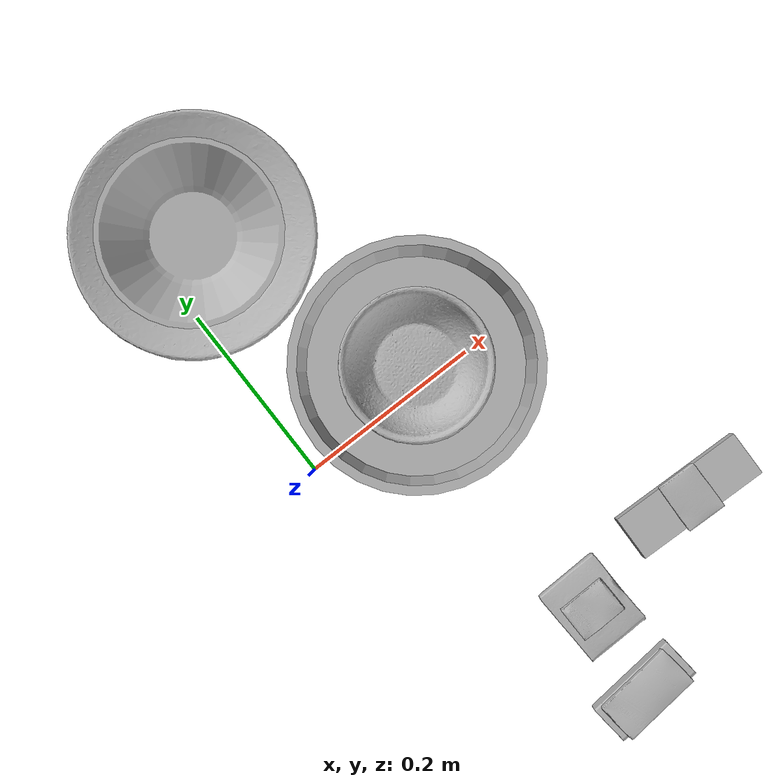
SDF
<?xml version="1.0" ?>
<sdf version="1.4">
  <world name="default">
    <light name="light1" type="point">
      <pose>0 0 1 0 0 0</pose>
      <diffuse>3 3 3 1</diffuse>
      <specular>3 3 3 1</specular>
    </light>
    <light name="light2" type="point">
      <pose>0 0.5 2 0 0 0</pose>
      <diffuse>1 1 1 1</diffuse>
      <specular>1 1 1 1</specular>
    </light>
    <light name="light3" type="point">
      <pose>0 0.5 2 0 0 0</pose>
      <diffuse>3 3 3 1</diffuse>
      <specular>3 3 3 1</specular>
    </light>
    <scene>
      <ambient>0.7 0.7 0.7</ambient>
    </scene>
    <model name="box1">
      <link name="link_box1">
        <collision name="default">
          <geometry>
            <mesh>
              <uri>model://jenga/collision_meshes/collision.obj</uri>
              <scale>1.0 1.0 1.0</scale>
            </mesh>
          </geometry>
          <surface>
            <friction>
              <ode>
                <mu>0.5</mu>
                <mu2>0.5</mu2>
              </ode>
            </friction>
          </surface>
        </collision>
        <visual name="default">
          <geometry>
            <mesh>
              <uri>model://jenga/visual_meshes/visual.dae</uri>
              <scale>1.0 1.0 1.0</scale>
            </mesh>
          </geometry>
        </visual>
        <inertial>
          <mass>0.21843092143535614</mass>
          <pose>-2.502855807051674e-07 -0.00010250011109746993 -4.092339804628864e-05 0.0 -7.342154049184251e-07 0.0</pose>
          <inertia>
            <ixx>6.0445138e-05</ixx>
            <iyy>0.0004095746</iyy>
            <izz>0.00043725572</izz>
            <ixy>0</ixy>
            <ixz>0</ixz>
            <iyz>0</iyz>
          </inertia>
        </inertial>
      </link>
      <pose>0.29000329971313477 -0.2598975896835327 0.014999999664723873 3.521602869732722e-07 -1.5552028231152527e-08 -0.027384141955537462</pose>
    </model>
    <model name="box11">
      <link name="link_box11">
        <collision name="default">
          <geometry>
            <mesh>
              <uri>model://pudding_box/collision_meshes/collision.obj</uri>
              <scale>0.5 0.5 0.5</scale>
            </mesh>
          </geometry>
          <surface>
            <friction>
              <ode>
                <mu>0.5</mu>
                <mu2>0.5</mu2>
              </ode>
            </friction>
          </surface>
        </collision>
        <visual name="default">
          <geometry>
            <mesh>
              <uri>model://pudding_box/visual_meshes/visual.dae</uri>
              <scale>0.5 0.5 0.5</scale>
            </mesh>
          </geometry>
        </visual>
        <inertial>
          <mass>0.04130476340651512</mass>
          <pose>0.00024474109522998333 0.00040339428232982755 -0.0002594413817860186 0.005213101341234124 -0.006603795469139562 0.020079830758209564</pose>
          <inertia>
            <ixx>1.1673226e-05</ixx>
            <iyy>7.85383e-06</iyy>
            <izz>1.723857e-05</izz>
            <ixy>0</ixy>
            <ixz>0</ixz>
            <iyz>0</iyz>
          </inertia>
        </inertial>
      </link>
      <pose>0.2897201180458069 -0.26027122139930725 0.03986290842294693 0.022351590062401987 -0.011390403936930027 -0.02751157354805657</pose>
    </model>
    <model name="box2">
      <link name="link_box2">
        <collision name="default">
          <geometry>
            <mesh>
              <uri>model://gelatin_box/collision_meshes/collision.obj</uri>
              <scale>1.0 1.0 1.0</scale>
            </mesh>
          </geometry>
          <surface>
            <friction>
              <ode>
                <mu>0.5</mu>
                <mu2>0.5</mu2>
              </ode>
            </friction>
          </surface>
        </collision>
        <visual name="default">
          <geometry>
            <mesh>
              <uri>model://gelatin_box/visual_meshes/visual.dae</uri>
              <scale>1.0 1.0 1.0</scale>
            </mesh>
          </geometry>
        </visual>
        <inertial>
          <mass>0.24153950810432434</mass>
          <pose>0.0004319618456065655 0.00011156871914863586 -0.0003640321083366871 -0.001050371984258798 -0.004755819621622892 0.016440559472145032</pose>
          <inertia>
            <ixx>0.00017050719</ixx>
            <iyy>0.00012179239</iyy>
            <izz>0.0002595499</izz>
            <ixy>0</ixy>
            <ixz>0</ixz>
            <iyz>0</iyz>
          </inertia>
        </inertial>
      </link>
      <pose>0.1399851143360138 -0.2900899350643158 0.015168316662311554 0.00559746367759257 -0.0073045724674317275 0.022150693611762463</pose>
    </model>
    <model name="box21">
      <link name="link_box21">
        <collision name="default">
          <geometry>
            <mesh>
              <uri>model://cracker_box/collision_meshes/collision.obj</uri>
              <scale>0.25 0.25 0.25</scale>
            </mesh>
          </geometry>
          <surface>
            <friction>
              <ode>
                <mu>0.5</mu>
                <mu2>0.5</mu2>
              </ode>
            </friction>
          </surface>
        </collision>
        <visual name="default">
          <geometry>
            <mesh>
              <uri>model://cracker_box/visual_meshes/visual.dae</uri>
              <scale>0.25 0.25 0.25</scale>
            </mesh>
          </geometry>
        </visual>
        <inertial>
          <mass>0.04855586588382721</mass>
          <pose>0.00023660322767682374 6.358561222441494e-05 -0.00042573834070935845 -0.00031620783521113603 -0.01110649053142329 0.0025467954689779603</pose>
          <inertia>
            <ixx>7.719027e-06</ixx>
            <iyy>1.2745631e-05</iyy>
            <izz>1.8189185e-05</izz>
            <ixy>0</ixy>
            <ixz>0</ixz>
            <iyz>0</iyz>
          </inertia>
        </inertial>
      </link>
      <pose>0.13907407224178314 -0.2891889214515686 0.03884478285908699 -0.02183825759502145 -0.04041607254614176 0.01981909684530615</pose>
    </model>
    <model name="box3">
      <link name="link_box3">
        <collision name="default">
          <geometry>
            <mesh>
              <uri>model://wood_block/collision_meshes/collision.obj</uri>
              <scale>0.5 0.5 0.5</scale>
            </mesh>
          </geometry>
          <surface>
            <friction>
              <ode>
                <mu>0.5</mu>
                <mu2>0.5</mu2>
              </ode>
            </friction>
          </surface>
        </collision>
        <visual name="default">
          <geometry>
            <mesh>
              <uri>model://wood_block/visual_meshes/visual.dae</uri>
              <scale>0.5 0.5 0.5</scale>
            </mesh>
          </geometry>
        </visual>
        <inertial>
          <mass>0.17342756688594818</mass>
          <pose>-2.906657982748584e-06 -0.000285404734313488 0.00013204291462898254 -0.052208426481931185 -0.005192696107352816 -0.006861379630616638</pose>
          <inertia>
            <ixx>5.8018082e-05</ixx>
            <iyy>0.00018327912</iyy>
            <izz>0.00018259356</izz>
            <ixy>0</ixy>
            <ixz>0</ixz>
            <iyz>0</iyz>
          </inertia>
        </inertial>
      </link>
      <pose>0.12983942031860352 -0.3891006112098694 0.022526416927576065 -0.016299278636813845 -0.0005462906298561252 0.09894683343377123</pose>
    </model>
    <model name="box31">
      <link name="link_box31">
        <collision name="default">
          <geometry>
            <mesh>
              <uri>model://sugar_box/collision_meshes/collision.obj</uri>
              <scale>0.5 0.5 0.5</scale>
            </mesh>
          </geometry>
          <surface>
            <friction>
              <ode>
                <mu>0.5</mu>
                <mu2>0.5</mu2>
              </ode>
            </friction>
          </surface>
        </collision>
        <visual name="default">
          <geometry>
            <mesh>
              <uri>model://sugar_box/visual_meshes/visual.dae</uri>
              <scale>0.5 0.5 0.5</scale>
            </mesh>
          </geometry>
        </visual>
        <inertial>
          <mass>0.102778859436512</mass>
          <pose>0.0005171863595023751 1.924554817378521e-05 -0.00018182402709499002 -0.00040462592244169 0.0010506634051582892 0.0026153783234817013</pose>
          <inertia>
            <ixx>2.1408765e-05</ixx>
            <iyy>6.919753e-05</iyy>
            <izz>8.2837694e-05</izz>
            <ixy>0</ixy>
            <ixz>0</ixz>
            <iyz>0</iyz>
          </inertia>
        </inertial>
      </link>
      <pose>0.1292453557252884 -0.3895469009876251 0.05673384293913841 -0.01607685159252718 -0.029591958281309953 0.10610051563256304</pose>
    </model>
    <model name="plate1">
      <link name="link_plate1">
        <collision name="default">
          <geometry>
            <mesh>
              <uri>model://pan_tefal/collision_meshes/collision.obj</uri>
              <scale>1.0 1.0 1.0</scale>
            </mesh>
          </geometry>
          <surface>
            <friction>
              <ode>
                <mu>0.5</mu>
                <mu2>0.5</mu2>
              </ode>
            </friction>
          </surface>
        </collision>
        <visual name="default">
          <geometry>
            <mesh>
              <uri>model://pan_tefal/visual_meshes/visual.dae</uri>
              <scale>1.0 1.0 1.0</scale>
            </mesh>
          </geometry>
        </visual>
        <inertial>
          <mass>1.4199398756027222</mass>
          <pose>-0.00018002341676037759 3.278919029980898e-05 -0.00851493515074253 0.0008190238651519852 -0.0003301374854212985 -0.3318555266382279</pose>
          <inertia>
            <ixx>0.009801778</ixx>
            <iyy>0.009864969</iyy>
            <izz>0.01804318</izz>
            <ixy>0</ixy>
            <ixz>0</ixz>
            <iyz>0</iyz>
          </inertia>
        </inertial>
      </link>
      <pose>0.15000000596046448 0.020000018179416656 0.03805001080036163 -1.9678531368785524e-09 1.9397837836081742e-09 0.019150254395310665</pose>
    </model>
    <model name="bowl1">
      <link name="link_bowl1">
        <collision name="default">
          <geometry>
            <mesh>
              <uri>model://bowl/collision_meshes/collision.obj</uri>
              <scale>1.0 1.0 1.0</scale>
            </mesh>
          </geometry>
          <surface>
            <friction>
              <ode>
                <mu>0.5</mu>
                <mu2>0.5</mu2>
              </ode>
            </friction>
          </surface>
        </collision>
        <visual name="default">
          <geometry>
            <mesh>
              <uri>model://bowl/visual_meshes/visual.dae</uri>
              <scale>1.0 1.0 1.0</scale>
            </mesh>
          </geometry>
        </visual>
        <inertial>
          <mass>0.10393582284450531</mass>
          <pose>0.00020445296831894666 -0.001030207728035748 -0.0008042644476518035 -0.01576405922653839 0.014546845721322095 0.7140430703653545</pose>
          <inertia>
            <ixx>0.00023874876</ixx>
            <iyy>0.00023341418</iyy>
            <izz>0.00040165734</izz>
            <ixy>0</ixy>
            <ixz>0</ixz>
            <iyz>0</iyz>
          </inertia>
        </inertial>
      </link>
      <pose>0.15001684427261353 0.019964732229709625 0.03550918400287628 0.0011315700875804493 0.0008275080463680106 -0.16967828012870234</pose>
    </model>
    <model name="plate2">
      <link name="link_plate2">
        <collision name="default">
          <geometry>
            <mesh>
              <uri>model://plate/collision_meshes/collision.obj</uri>
              <scale>1.0 1.0 1.0</scale>
            </mesh>
          </geometry>
          <surface>
            <friction>
              <ode>
                <mu>0.5</mu>
                <mu2>0.5</mu2>
              </ode>
            </friction>
          </surface>
        </collision>
        <visual name="default">
          <geometry>
            <mesh>
              <uri>model://plate/visual_meshes/visual.dae</uri>
              <scale>1.0 1.0 1.0</scale>
            </mesh>
          </geometry>
        </visual>
        <inertial>
          <mass>0.11643410474061966</mass>
          <pose>-0.0006044629844836891 0.000278257648460567 -0.001056199660524726 0.0022187586917557377 -0.0032254970862864826 0.45261837235677477</pose>
          <inertia>
            <ixx>0.00054468104</ixx>
            <iyy>0.0005394714</iyy>
            <izz>0.0010653147</izz>
            <ixy>0</ixy>
            <ixz>0</ixz>
            <iyz>0</iyz>
          </inertia>
        </inertial>
      </link>
      <pose>0.04999971762299538 0.2700001299381256 0.01373434066772461 -6.537055347639655e-06 -1.7419036586841843e-05 0.032607891154880005</pose>
    </model>
    <model name="bowl2">
      <link name="link_bowl2">
        <collision name="default">
          <geometry>
            <mesh>
              <uri>model://bowl_a/collision_meshes/collision.obj</uri>
              <scale>1.0 1.0 1.0</scale>
            </mesh>
          </geometry>
          <surface>
            <friction>
              <ode>
                <mu>0.5</mu>
                <mu2>0.5</mu2>
              </ode>
            </friction>
          </surface>
        </collision>
        <visual name="default">
          <geometry>
            <mesh>
              <uri>model://bowl_a/visual_meshes/visual.dae</uri>
              <scale>1.0 1.0 1.0</scale>
            </mesh>
          </geometry>
        </visual>
        <inertial>
          <mass>0.4875580668449402</mass>
          <pose>0.00027867365861311555 4.73092841275502e-05 -0.0013765289913862944 -0.0009805446644095745 -0.0010938154105800495 -0.1912289991244328</pose>
          <inertia>
            <ixx>0.0013881001</ixx>
            <iyy>0.0013966226</iyy>
            <izz>0.0024687892</izz>
            <ixy>0</ixy>
            <ixz>0</ixz>
            <iyz>0</iyz>
          </inertia>
        </inertial>
      </link>
      <pose>0.04997032880783081 0.26961296796798706 0.03478794917464256 0.012149124218032506 -0.004201076775949736 0.26441879165996585</pose>
    </model>
  </world>
</sdf>
